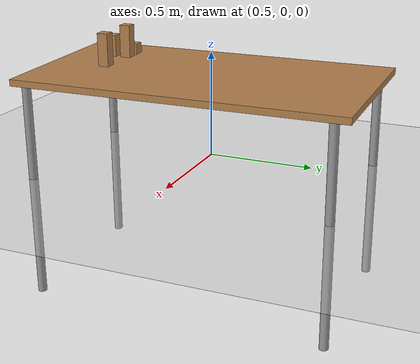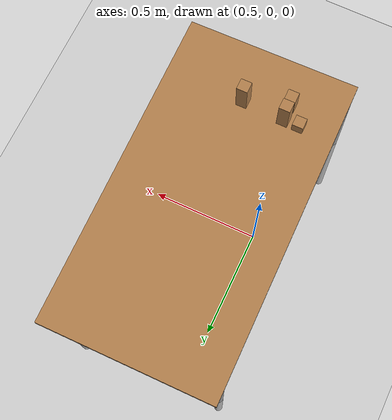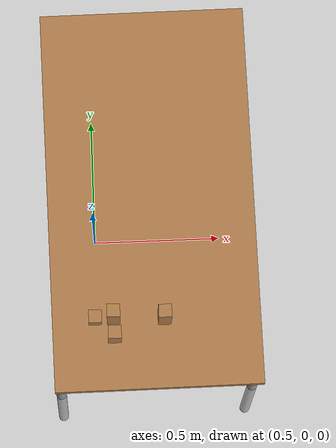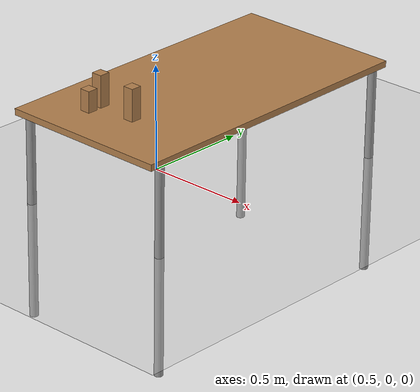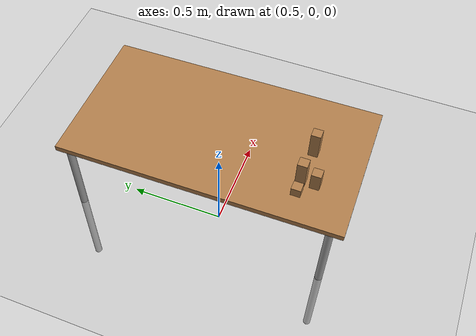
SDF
<sdf version="1.4">
 <world name="default">
  <model name="ground_plane">
   <static>1</static>
   <link name="link">
    <collision name="collision">
     <geometry><plane><normal>0 0 1</normal><size>100 100</size></plane></geometry>
     <surface><friction><ode><mu>100</mu><mu2>50</mu2></ode></friction></surface>
    </collision>
    <visual name="visual">
     <cast_shadows>0</cast_shadows>
     <geometry><plane><normal>0 0 1</normal><size>100 100</size></plane></geometry>
     <material>
      <script><uri>file://media/materials/scripts/gazebo.material</uri><name>Gazebo/Grey</name></script>
     </material>
    </visual>
    <velocity_decay><linear>0</linear><angular>0</angular></velocity_decay>
   </link>
  </model>
  <light name="sun" type="directional">
   <pose>0 0 10 0 -0 0</pose>
   <diffuse>0.8 0.8 0.8 1</diffuse>
   <specular>0.2 0.2 0.2 1</specular>
   <attenuation>
    <range>1000</range>
    <constant>0.9</constant>
    <linear>0.01</linear>
    <quadratic>0.001</quadratic>
   </attenuation>
   <direction>-0.5 0.1 -0.9</direction>
  </light>
  <physics type="ode">
   <real_time_update_rate>1000</real_time_update_rate>
   <gravity>0 0 -9.81</gravity>
   <max_step_size>0.001</max_step_size>
   <real_time_factor>1</real_time_factor>
  </physics>
  <scene><ambient>0.4 0.4 0.4 1</ambient><background>0.7 0.7 0.7 1</background><shadows>1</shadows></scene>
  <spherical_coordinates>
   <surface_model>EARTH_WGS84</surface_model>
   <latitude_deg>0</latitude_deg>
   <longitude_deg>0</longitude_deg>
   <elevation>0</elevation>
   <heading_deg>0</heading_deg>
  </spherical_coordinates>
  <model name="custom_1">
   <link name="link">
    <inertial>
     <mass>0.0565</mass>
     <inertia>
      <ixx>2.35417e-05</ixx>
      <ixy>0</ixy>
      <ixz>0</ixz>
      <iyy>2.35417e-05</iyy>
      <iyz>0</iyz>
      <izz>2.35417e-05</izz>
     </inertia>
    </inertial>
    <collision name="collision">
     <geometry><box><size>0.05 0.05 0.15</size></box></geometry>
     <surface><contact><ode><max_vel>0.1</max_vel><min_depth>0.001</min_depth></ode></contact></surface>
    </collision>
    <visual name="visual">
     <geometry><box><size>0.05 0.05 0.15</size></box></geometry>
     <material>
      <script><uri>file://media/materials/scripts/gazebo.material</uri><name>Gazebo/Wood</name></script>
     </material>
    </visual>
    <velocity_decay><linear>0</linear><angular>0</angular></velocity_decay>
   </link>
   <pose>0.567851 -0.401424 0.533629 4.5e-05 0.007294 -1.2e-05</pose>
   <static>0</static>
  </model>
  <model name="custom_2">
   <link name="link">
    <inertial>
     <mass>0.0565</mass>
     <inertia>
      <ixx>2.35417e-05</ixx>
      <ixy>0</ixy>
      <ixz>0</ixz>
      <iyy>2.35417e-05</iyy>
      <iyz>0</iyz>
      <izz>2.35417e-05</izz>
     </inertia>
    </inertial>
    <collision name="collision">
     <geometry><box><size>0.05 0.05 0.1</size></box></geometry>
     <surface><contact><ode><max_vel>0.1</max_vel><min_depth>0.001</min_depth></ode></contact></surface>
    </collision>
    <visual name="visual">
     <geometry><box><size>0.05 0.05 0.1</size></box></geometry>
     <material>
      <script><uri>file://media/materials/scripts/gazebo.material</uri><name>Gazebo/Wood</name></script>
     </material>
    </visual>
    <velocity_decay><linear>0</linear><angular>0</angular></velocity_decay>
   </link>
   <pose>0.57005 -0.474175 0.508408 -5.2e-05 0.015717 -0.000106</pose>
   <static>0</static>
  </model>
  <model name="custom_3">
   <link name="link">
    <inertial>
     <mass>0.0565</mass>
     <inertia>
      <ixx>2.35417e-05</ixx>
      <ixy>0</ixy>
      <ixz>0</ixz>
      <iyy>2.35417e-05</iyy>
      <iyz>0</iyz>
      <izz>2.35417e-05</izz>
     </inertia>
    </inertial>
    <collision name="collision">
     <geometry><box><size>0.05 0.05 0.05</size></box></geometry>
     <surface><contact><ode><max_vel>0.1</max_vel><min_depth>0.001</min_depth></ode></contact></surface>
    </collision>
    <visual name="visual">
     <geometry><box><size>0.05 0.05 0.05</size></box></geometry>
     <material>
      <script><uri>file://media/materials/scripts/gazebo.material</uri><name>Gazebo/Wood</name></script>
     </material>
    </visual>
    <velocity_decay><linear>0</linear><angular>0</angular></velocity_decay>
   </link>
   <pose>0.497095 -0.401958 0.484556 -0.000406 0.01625 1e-06</pose>
   <static>0</static>
  </model>
  <model name="custom_1_0">
   <link name="link">
    <inertial>
     <mass>0.0565</mass>
     <inertia>
      <ixx>2.35417e-05</ixx>
      <ixy>0</ixy>
      <ixz>0</ixz>
      <iyy>2.35417e-05</iyy>
      <iyz>0</iyz>
      <izz>2.35417e-05</izz>
     </inertia>
    </inertial>
    <collision name="collision">
     <geometry><box><size>0.05 0.05 0.15</size></box></geometry>
     <surface><contact><ode><max_vel>0.1</max_vel><min_depth>0.001</min_depth></ode></contact></surface>
    </collision>
    <visual name="visual">
     <geometry><box><size>0.05 0.05 0.15</size></box></geometry>
     <material>
      <script><uri>file://media/materials/scripts/gazebo.material</uri><name>Gazebo/Wood</name></script>
     </material>
    </visual>
    <velocity_decay><linear>0</linear><angular>0</angular></velocity_decay>
   </link>
   <pose>0.76312 -0.409303 0.530773 -0.000376 0.016218 -8e-05</pose>
   <static>0</static>
  </model>
  <model name="custom_table">
   <static>1</static>
   <link name="link">
    <collision name="surface">
     <geometry><box><size>1.5 0.8 0.03</size></box></geometry>
     <surface><friction><ode><mu>0.6</mu><mu2>0.6</mu2></ode></friction></surface>
    </collision>
    <visual name="visual1">
     <geometry><box><size>1.5 0.8 0.03</size></box></geometry>
     <material>
      <script><uri>file://media/materials/scripts/gazebo.material</uri><name>Gazebo/Wood</name></script>
     </material>
    </visual>
    <collision name="front_left_leg">
     <pose>0.68 0.38 0.5 0 -0 0</pose>
     <geometry><cylinder><radius>0.02</radius><length>1</length></cylinder></geometry>
    </collision>
    <visual name="front_left_leg">
     <pose>0.68 0.38 0.5 0 -0 0</pose>
     <geometry><cylinder><radius>0.02</radius><length>1</length></cylinder></geometry>
     <material>
      <script><uri>file://media/materials/scripts/gazebo.material</uri><name>Gazebo/Grey</name></script>
     </material>
    </visual>
    <collision name="front_right_leg">
     <pose>0.68 -0.38 0.5 0 -0 0</pose>
     <geometry><cylinder><radius>0.02</radius><length>1</length></cylinder></geometry>
    </collision>
    <visual name="front_right_leg">
     <pose>0.68 -0.38 0.5 0 -0 0</pose>
     <geometry><cylinder><radius>0.02</radius><length>1</length></cylinder></geometry>
     <material>
      <script><uri>file://media/materials/scripts/gazebo.material</uri><name>Gazebo/Grey</name></script>
     </material>
    </visual>
    <collision name="back_right_leg">
     <pose>-0.68 -0.38 0.5 0 -0 0</pose>
     <geometry><cylinder><radius>0.02</radius><length>1</length></cylinder></geometry>
    </collision>
    <visual name="back_right_leg">
     <pose>-0.68 -0.38 0.5 0 -0 0</pose>
     <geometry><cylinder><radius>0.02</radius><length>1</length></cylinder></geometry>
     <material>
      <script><uri>file://media/materials/scripts/gazebo.material</uri><name>Gazebo/Grey</name></script>
     </material>
    </visual>
    <collision name="back_left_leg">
     <pose>-0.68 0.38 0.5 0 -0 0</pose>
     <geometry><cylinder><radius>0.02</radius><length>1</length></cylinder></geometry>
    </collision>
    <visual name="back_left_leg">
     <pose>-0.68 0.38 0.5 0 -0 0</pose>
     <geometry><cylinder><radius>0.02</radius><length>1</length></cylinder></geometry>
     <material>
      <script><uri>file://media/materials/scripts/gazebo.material</uri><name>Gazebo/Grey</name></script>
     </material>
    </visual>
    <velocity_decay><linear>0</linear><angular>0</angular></velocity_decay>
   </link>
   <pose>0.726572 0.070862 0.441163 -3.12533 0.000225 1.5819</pose>
  </model>
 </world>
</sdf>
